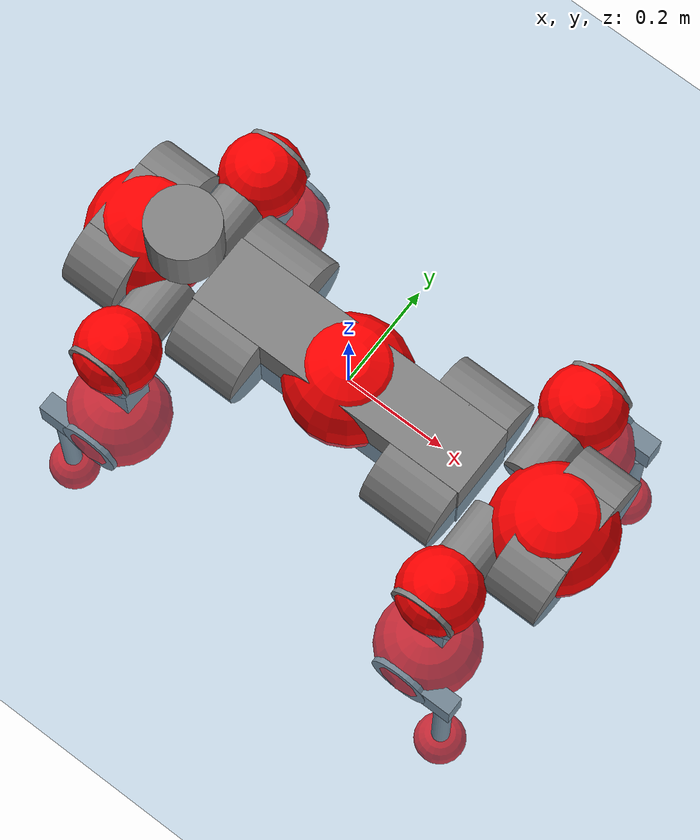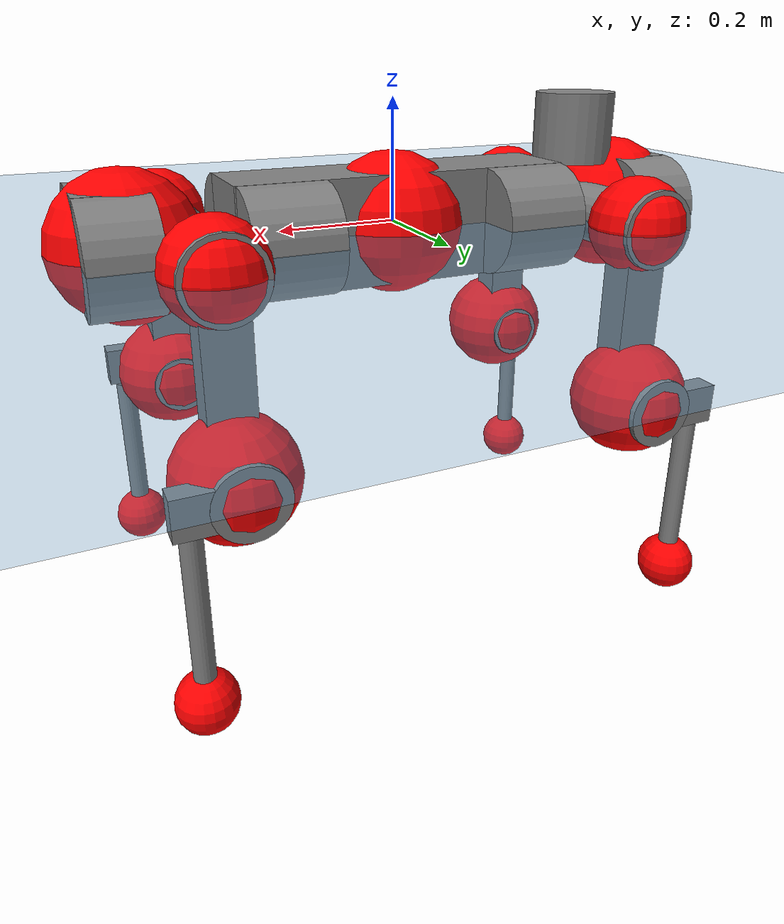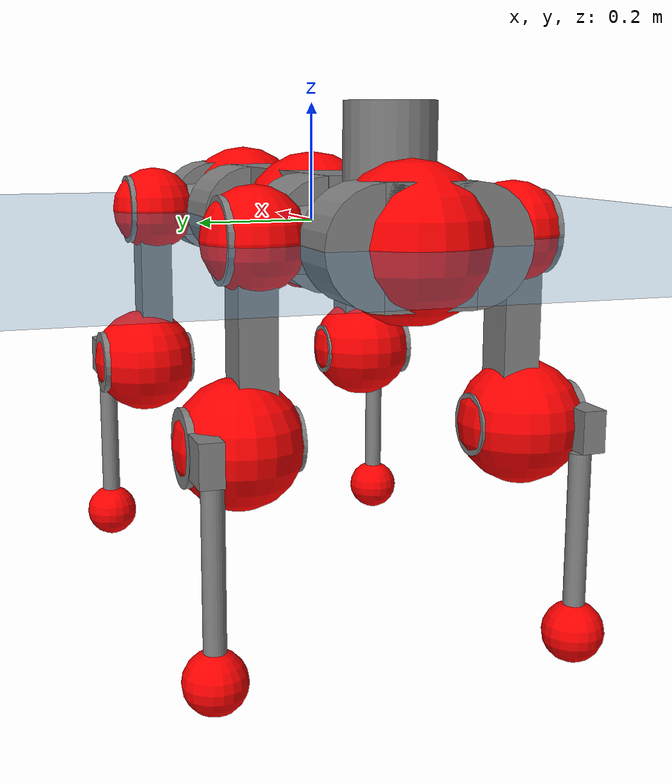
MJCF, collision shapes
<mujoco model="anymal_c">
  <compiler angle="radian" assetdir="assets" balanceinertia="true" inertiafromgeom="false"/>

  <option timestep="0.005" density="1.2" viscosity="2e-05"/>

  <size nkey="1"/>

  <visual>
    <quality shadowsize="8192"/>
    <map shadowclip="0.5"/>
  </visual>

  <default>
    <default class="/">
      <material specular="0" shininess="0.25"/>
      <geom contype="0" conaffinity="0" group="1" solref="-1000 -80"/>
      <site size="0.01 0.005 0.005" group="5"/>
      <general forcelimited="true" forcerange="-80 80" biastype="affine" gainprm="80" biasprm="0 -80 -2"/>
      <default class="anymal_c">
        <joint armature="0.01" damping="0.01" frictionloss="0.1"/>
        <default class="visual">
          <geom type="mesh" group="2"/>
          <default class="visual_zflip"/>
        </default>
        <default class="collision">
          <geom type="cylinder" group="3"/>
          <default class="foot">
            <geom size="0.03 0 0" type="sphere" condim="6" priority="1" friction="0.8 0.02 0.01" solimp="0.015 1 0.03"/>
          </default>
        </default>
      </default>
      <default class="reward_collision_sphere">
        <geom group="5" rgba="1 0 0 1"/>
      </default>
    </default>
  </default>

  <asset>
    <texture type="skybox" colorspace="auto" name="//unnamed_texture_0" builtin="gradient" rgb1="0.95 0.95 0.95" rgb2="0.95 0.95 0.95" width="100" height="600"/>
    <texture type="2d" colorspace="auto" name="texplane" builtin="checker" rgb1="0.345 0.575 0.748" rgb2="0.345 0.575 0.748" markrgb="1 1 1" width="512" height="512"/>
    <texture type="2d" colorspace="linear" name="base" file="base.png"/>
    <texture type="2d" colorspace="linear" name="top_shell" file="top_shell.png"/>
    <texture type="2d" colorspace="linear" name="bottom_shell" file="bottom_shell.png"/>
    <texture type="2d" colorspace="linear" name="remote" file="remote.png"/>
    <texture type="2d" colorspace="linear" name="hatch" file="hatch.png"/>
    <texture type="2d" colorspace="linear" name="handle" file="handle.png"/>
    <texture type="2d" colorspace="linear" name="face" file="face.png"/>
    <texture type="2d" colorspace="linear" name="battery" file="battery.png"/>
    <texture type="2d" colorspace="linear" name="lidar_cage" file="lidar_cage.png"/>
    <texture type="2d" colorspace="linear" name="depth_camera" file="depth_camera.png"/>
    <texture type="2d" colorspace="linear" name="wide_angle_camera" file="wide_angle_camera.png"/>
    <texture type="2d" colorspace="linear" name="lidar" file="lidar.png"/>
    <texture type="2d" colorspace="linear" name="drive" file="drive.png"/>
    <texture type="2d" colorspace="linear" name="hip_l" file="hip_l.png"/>
    <texture type="2d" colorspace="linear" name="shank_l" file="shank_l.png"/>
    <texture type="2d" colorspace="linear" name="foot" file="foot.png"/>
    <texture type="2d" colorspace="linear" name="thigh" file="thigh.png"/>
    <texture type="2d" colorspace="linear" name="shank_r" file="shank_r.png"/>
    <texture type="2d" colorspace="linear" name="hip_r" file="hip_r.png"/>
    <material name="MatPlane" class="/" texture="texplane" texuniform="true" texrepeat="2 2" specular="0.9" shininess="0.5"/>
    <material name="black_plastic" class="/" rgba="0.007 0.007 0.007 1"/>
    <material name="green" class="/" rgba="0.052 0.178 0.033 1"/>
    <material name="red" class="/" rgba="0.178 0.006 0.005 1"/>
    <material name="yellow" class="/" rgba="0.178 0.119 0.006 1"/>
    <material name="lwl" class="/" rgba="0.8 0.8 0.8 1"/>
    <material name="base" class="/" texture="base"/>
    <material name="top_shell" class="/" texture="top_shell"/>
    <material name="bottom_shell" class="/" texture="bottom_shell"/>
    <material name="hip_l" class="/" texture="hip_l"/>
    <material name="thigh" class="/" texture="thigh"/>
    <material name="shank_l" class="/" texture="shank_l"/>
    <material name="foot" class="/" texture="foot"/>
    <material name="hip_r" class="/" texture="hip_r"/>
    <material name="shank" class="/" texture="shank_r"/>
    <material name="hatch" class="/" texture="hatch"/>
    <material name="remote" class="/" texture="remote"/>
    <material name="handle" class="/" texture="handle"/>
    <material name="face" class="/" texture="face"/>
    <material name="depth_camera" class="/" texture="depth_camera"/>
    <material name="wide_angle_camera" class="/" texture="wide_angle_camera"/>
    <material name="battery" class="/" texture="battery"/>
    <material name="lidar_cage" class="/" texture="lidar_cage"/>
    <material name="lidar" class="/" texture="lidar"/>
    <material name="drive" class="/" texture="drive"/>
    <mesh name="base_0" class="/" file="base_0.obj"/>
    <mesh name="base_1" class="/" file="base_1.obj"/>
    <mesh name="base_2" class="/" file="base_2.obj"/>
    <mesh name="base_3" class="/" file="base_3.obj"/>
    <mesh name="base_4" class="/" file="base_4.obj"/>
    <mesh name="base_5" class="/" file="base_5.obj"/>
    <mesh name="top_shell" class="/" file="top_shell.obj"/>
    <mesh name="bottom_shell" class="/" file="bottom_shell.obj"/>
    <mesh name="remote" class="/" file="remote.obj"/>
    <mesh name="handle" class="/" file="handle.obj"/>
    <mesh name="face" class="/" file="face.obj"/>
    <mesh name="wide_angle_camera" class="/" file="wide_angle_camera.obj"/>
    <mesh name="depth_camera" class="/" file="depth_camera.obj"/>
    <mesh name="battery" class="/" file="battery.obj"/>
    <mesh name="lidar_cage" class="/" file="lidar_cage.obj"/>
    <mesh name="lidar" class="/" file="lidar.obj"/>
    <mesh name="drive" class="/" file="drive.obj"/>
    <mesh name="hip_l" class="/" file="hip_l.obj"/>
    <mesh name="thigh" class="/" file="thigh.obj"/>
    <mesh name="shank_l" class="/" file="shank_l.obj"/>
    <mesh name="foot" class="/" file="foot.obj"/>
    <mesh name="hip_r" class="/" file="hip_r.obj"/>
    <mesh name="hatch" class="/" file="hatch.obj"/>
    <mesh name="shank_r" class="/" file="shank_r.obj"/>
  </asset>

  <worldbody>
    <geom name="floor" class="/" size="100 100 0.125" type="plane" group="0" material="MatPlane"/>
    <light name="toplight_shadow" class="/" pos="0 0 5" dir="0.0990148 0.0990148 -0.990148" type="directional" ambient="0.04 0.04 0.04" diffuse="0.55 0.55 0.55" specular="0.12 0.12 0.12"/>
    <light name="toplight_fill" class="/" pos="0 0 5" dir="0.0990148 0.0990148 -0.990148" type="directional" castshadow="false" ambient="0.04 0.04 0.04" diffuse="0.3 0.3 0.3" specular="0.08 0.08 0.08"/>
    <body name="trunk" childclass="anymal_c" pos="2.95256e-05 -8.15354e-05 -0.000448879" quat="1 3.81663e-05 -1.05904e-05 -6.90275e-07">
      <inertial pos="0.00202503 -0.000645494 0.0526649" quat="0.500201 0.49979 0.5 0.500009" mass="18.7765" diaginertia="0.570398 0.470632 0.269523"/>
      <joint name="//unnamed_joint_0" type="free" armature="0" damping="0" frictionloss="0"/>
      <geom name="//unnamed_geom_1" class="visual" material="green" mesh="base_0"/>
      <geom name="//unnamed_geom_2" class="visual" material="yellow" mesh="base_1"/>
      <geom name="//unnamed_geom_3" class="visual" material="red" mesh="base_2"/>
      <geom name="//unnamed_geom_4" class="visual" material="black_plastic" mesh="base_3"/>
      <geom name="//unnamed_geom_5" class="visual" material="lwl" mesh="base_4"/>
      <geom name="//unnamed_geom_6" class="visual" material="base" mesh="base_5"/>
      <geom name="trunk_1" class="collision" size="0.286554 0.0691682 0.0889306" type="box"/>
      <geom name="trunk_2" class="collision" size="0.0889306 0.0716385" pos="0.212313 0.0661597 0" quat="0.707107 0 0.707107 0"/>
      <geom name="trunk_3" class="collision" size="0.0889306 0.0716385" pos="-0.212313 0.0661597 0" quat="0.707107 0 0.707107 0"/>
      <geom name="trunk_4" class="collision" size="0.0889306 0.0716385" pos="0.212313 -0.0661597 0" quat="0.707107 0 0.707107 0"/>
      <geom name="trunk_5" class="collision" size="0.0889306 0.0716385" pos="-0.212313 -0.0661597 0" quat="0.707107 0 0.707107 0"/>
      <geom name="//unnamed_geom_12" class="visual" material="top_shell" mesh="top_shell"/>
      <geom name="//unnamed_geom_13" class="visual" material="bottom_shell" mesh="bottom_shell"/>
      <geom name="//unnamed_geom_14" class="visual" material="remote" mesh="remote"/>
      <geom name="//unnamed_geom_15" class="visual" material="handle" mesh="handle"/>
      <geom name="//unnamed_geom_16" class="visual" pos="0.404615 0 0" quat="1 0 0 0" material="face" mesh="face"/>
      <geom name="trunk_6" class="collision" size="0.0543465 0.0691682 0.0889306" pos="0.458303 0 0" type="box"/>
      <geom name="//unnamed_geom_18" class="collision" size="0.0889306 0.0543465" pos="0.458303 0.0661597 0" quat="0.707107 0 0.707107 0"/>
      <geom name="//unnamed_geom_19" class="collision" size="0.0889306 0.0543465" pos="0.458303 -0.0661597 0" quat="0.707107 0 0.707107 0"/>
      <geom name="//unnamed_geom_20" class="visual" pos="0.450643 0 -0.030966" quat="0.965926 0 0.258819 0" material="depth_camera" mesh="depth_camera"/>
      <geom name="//unnamed_geom_21" class="visual" pos="0.500765 0 0.0156147" material="wide_angle_camera" mesh="wide_angle_camera"/>
      <geom name="//unnamed_geom_22" class="visual_zflip" pos="-0.404615 0 0" quat="0 0 0 1" material="face" mesh="face"/>
      <geom name="trunk_7" class="collision" size="0.0543465 0.0691682 0.0889306" pos="-0.458303 0 0" quat="0 0 0 1" type="box"/>
      <geom name="//unnamed_geom_24" class="collision" size="0.0889306 0.0543465" pos="-0.458303 -0.0661597 0" quat="0 -0.707107 0 0.707107"/>
      <geom name="//unnamed_geom_25" class="collision" size="0.0889306 0.0543465" pos="-0.458303 0.0661597 0" quat="0 -0.707107 0 0.707107"/>
      <geom name="//unnamed_geom_26" class="visual" pos="-0.450643 0 -0.030966" quat="0 -0.258819 0 0.965926" material="depth_camera" mesh="depth_camera"/>
      <geom name="//unnamed_geom_27" class="visual_zflip" pos="-0.500765 0 0.0156147" quat="0 0 0 1" material="wide_angle_camera" mesh="wide_angle_camera"/>
      <geom name="//unnamed_geom_28" class="visual" material="battery" mesh="battery"/>
      <geom name="//unnamed_geom_29" class="visual" pos="0 0.0718611 0.0297924" quat="0.683013 -0.183013 0.183013 0.683013" material="depth_camera" mesh="depth_camera"/>
      <geom name="//unnamed_geom_30" class="visual" pos="0 -0.0718611 0.0297924" quat="0.683013 0.183013 0.183013 -0.683013" material="depth_camera" mesh="depth_camera"/>
      <geom name="//unnamed_geom_31" class="visual" pos="-0.355319 0 0.0766651" quat="1 0 0 0" material="lidar_cage" mesh="lidar_cage"/>
      <geom name="trunk_8" class="collision" size="0.0691682 0.059287" pos="-0.355319 0 0.139249"/>
      <geom name="//unnamed_geom_33" class="visual" pos="-0.355319 -1.21839e-05 0.148324" quat="0.707107 0 0 -0.707107" material="lidar" mesh="lidar"/>
      <geom name="//unnamed_geom_34" class="visual" pos="0.292748 0.0983292 -1.68921e-09" quat="0.258819 0.965926 0 0" material="drive" mesh="drive"/>
      <geom name="//unnamed_geom_35" class="visual" pos="0.292748 -0.0983292 1.68921e-09" quat="0.258819 -0.965926 0 0" material="drive" mesh="drive"/>
      <geom name="//unnamed_geom_36" class="visual" pos="-0.292748 0.0983292 1.68921e-09" quat="0 0 0.965926 -0.258819" material="drive" mesh="drive"/>
      <geom name="//unnamed_geom_37" class="visual" pos="-0.292748 -0.0983292 -1.68921e-09" quat="0 0 -0.965926 -0.258819" material="drive" mesh="drive"/>
      <geom name="//unnamed_geom_38" class="visual" pos="0.113233 0 0.0761436" quat="1 0 0 0" material="hatch" mesh="hatch"/>
      <geom name="//unnamed_geom_39" class="reward_collision_sphere" size="0.118574"/>
      <geom name="//unnamed_geom_40" class="reward_collision_sphere" size="0.118574" pos="0.439268 0 0"/>
      <geom name="//unnamed_geom_41" class="reward_collision_sphere" size="0.118574" pos="-0.439268 0 0"/>
      <site name="imu" pos="0.245049 0.00366236 0.0515952" size="0.00988117"/>
      <camera name="track" pos="0 -1.89028 0" quat="0.707107 0.707107 0 0" mode="trackcom"/>
      <camera name="ego_camera" pos="0.439268 0 -0.0417225" quat="-0.5 -0.5 0.5 0.5"/>
      <body name="LF_HIP" pos="0.293286 0.0981693 -0.000605768" quat="0.258997 0.965878 2.75556e-05 0.000109717">
        <inertial pos="0.055472 -0.0140265 -0.00896603" quat="-0.128071 0.710388 -0.133654 0.679031" mass="2.70969" diaginertia="0.00519344 0.00373172 0.00410326"/>
        <joint name="LF_HAA" pos="0 0 0" axis="0.99999 0.000710023 0.00441027" range="-0.72292 0.474991" armature="0.00988141" damping="0.0142375" frictionloss="0.0951625"/>
        <geom name="//unnamed_geom_42" class="visual" pos="0 -9.93686e-05 1.63212e-05" quat="0.258819 -0.965926 0 0" material="hip_l" mesh="hip_l"/>
        <geom name="//unnamed_geom_43" class="visual" pos="0.0584714 -0.0704771 -0.0414142" quat="0.183013 -0.683013 0.683013 0.183013" material="drive" mesh="drive"/>
        <geom name="//unnamed_geom_44" class="collision" size="0.0494059 0.0691682" pos="0.0584714 -0.0113037 -0.00720235" quat="-0.353553 -0.612372 0.612372 -0.353553"/>
        <body name="LF_THIGH" pos="0.0594543 -0.0699084 -0.0440657" quat="0.182934 -0.682989 0.683087 0.182904">
          <inertial pos="0.0302705 0.000278206 -0.256005" quat="0.993082 -0.00495766 -0.08168 0.0842124" mass="2.99109" diaginertia="0.027065 0.0226163 0.00522235"/>
          <joint name="LF_HFE" pos="0 0 0" axis="0.999993 -0.00363127 -0.000747456" stiffness="0.0033159" range="-3.12606 3.13988" armature="0.010239" damping="0.00451441" frictionloss="0.09902"/>
          <geom name="//unnamed_geom_45" class="visual" pos="0.000617023 9.72283e-07 0" quat="0.707107 0 0 -0.707107" material="thigh" mesh="thigh"/>
          <geom name="//unnamed_geom_46" class="collision" size="0.0642276 0.0395247" pos="0.039046 0 0" quat="0.5 0.5 -0.5 -0.5"/>
          <geom name="//unnamed_geom_47" class="collision" size="0.0370544 0.0296435 0.139635" pos="0.0292845 0 -0.147399" quat="0.707107 0 0 -0.707107" type="box"/>
          <geom name="//unnamed_geom_48" class="visual" pos="0.0979079 0 -0.297273" quat="1 0 0 0" material="drive" mesh="drive"/>
          <geom name="//unnamed_geom_49" class="collision" size="0.0494059 0.0691682" pos="0.0295774 0 -0.297273" quat="0.707107 0 0.707107 0"/>
          <geom name="//unnamed_geom_50" class="reward_collision_sphere" size="0.0790494" pos="0.0244038 0 0"/>
          <body name="LF_SHANK" pos="0.0983046 -0.000468256 -0.297415" quat="1 -1.88303e-05 2.87977e-06 5.35981e-06">
            <inertial pos="0.00443971 -0.058056 -0.0840713" quat="0.992916 -0.115834 -0.00129593 -0.0264111" mass="0.568722" diaginertia="0.00901643 0.0069558 0.00138375"/>
            <joint name="LF_KFE" pos="0 0 0" axis="0.999996 -0.0017014 -0.00236442" stiffness="0.000480878" range="-3.15605 3.1227" armature="0.00965685" damping="0.00752354" frictionloss="0.10171"/>
            <geom name="//unnamed_geom_51" class="visual" pos="0.000201198 0.0010728 0" quat="0.707107 0 0 -0.707107" material="shank_l" mesh="shank_l"/>
            <geom name="LF_kfe_act" class="collision" size="0.059287 0.0197623" pos="0.019523 0 0" quat="0.5 0.5 -0.5 -0.5"/>
            <geom name="//unnamed_geom_53" class="collision" size="0.0568158 0.033349 0.0187742" pos="0.019523 -0.0543445 0" quat="0.5 0.5 -0.5 -0.5" type="box"/>
            <geom name="//unnamed_geom_54" class="visual" pos="0.0127387 -0.0827792 -0.352524" quat="0.382683 0 0 -0.92388" material="foot" mesh="foot"/>
            <geom name="LF_calf" class="collision" size="0.0172921 0.139574" pos="0.0127388 -0.0831249 -0.176262" quat="0.707107 0 0 -0.707107"/>
            <geom name="LF_foot" class="foot" size="0.0298918" pos="0.0127388 -0.0831249 -0.329055" quat="0.707107 0 0 -0.707107"/>
            <geom name="//unnamed_geom_57" class="reward_collision_sphere" size="0.0988117" pos="-0.0488075 0 0"/>
            <geom name="//unnamed_geom_58" class="reward_collision_sphere" size="0.0494059" pos="0.0127388 -0.0831249 -0.329055"/>
            <site name="LF_foot" class="foot" pos="0.0127388 -0.0831249 -0.329055" quat="0.707107 0 0 -0.707107" size="0.00988117"/>
          </body>
        </body>
      </body>
      <body name="RF_HIP" pos="0.293872 -0.0986465 -0.000339576" quat="0.258548 -0.965998 7.8741e-06 3.42627e-05">
        <inertial pos="0.0556015 0.0148353 -0.00872515" quat="0.133142 0.67824 0.12891 0.711088" mass="2.69202" diaginertia="0.00520153 0.00369176 0.00405752"/>
        <joint name="RF_HAA" pos="0 0 0" axis="0.999987 -0.00406099 -0.00298283" range="-0.501381 0.735012" armature="0.010099" damping="0.0140902" frictionloss="0.0944469"/>
        <geom name="//unnamed_geom_59" class="visual" pos="0 9.93678e-05 1.63212e-05" quat="0.258819 0.965926 0 0" material="hip_r" mesh="hip_r"/>
        <geom name="//unnamed_geom_60" class="visual" pos="0.0584714 0.0704771 -0.0414142" quat="0.183013 0.683013 0.683013 -0.183013" material="drive" mesh="drive"/>
        <geom name="//unnamed_geom_61" class="collision" size="0.0494059 0.0691682" pos="0.0584714 0.0113037 -0.00720235" quat="-0.353553 0.612372 0.612372 0.353553"/>
        <body name="RF_THIGH" pos="0.0589548 0.0695059 -0.0436981" quat="0.182904 0.683131 0.682996 -0.18274">
          <inertial pos="0.0306913 9.09678e-05 -0.25639" quat="0.99263 -0.00606728 -0.0822324 0.0888103" mass="2.93363" diaginertia="0.0267525 0.0226814 0.00513442"/>
          <joint name="RF_HFE" pos="0 0 0" axis="0.999999 -0.00128242 -0.000878063" stiffness="0.0016585" range="-3.14266 3.15601" armature="0.0100995" damping="0.00216682" frictionloss="0.10195"/>
          <geom name="//unnamed_geom_62" class="visual" pos="0.000617023 9.72283e-07 0" quat="0.707107 0 0 -0.707107" material="thigh" mesh="thigh"/>
          <geom name="//unnamed_geom_63" class="collision" size="0.0642276 0.0395247" pos="0.039046 0 0" quat="0.5 0.5 0.5 0.5"/>
          <geom name="//unnamed_geom_64" class="collision" size="0.0370544 0.0296435 0.139635" pos="0.0292845 0 -0.147399" quat="0.707107 0 0 0.707107" type="box"/>
          <geom name="//unnamed_geom_65" class="visual" pos="0.0979079 0 -0.297273" quat="1 0 0 0" material="drive" mesh="drive"/>
          <geom name="//unnamed_geom_66" class="collision" size="0.0494059 0.0691682" pos="0.0295774 0 -0.297273" quat="0.707107 0 0.707107 0"/>
          <geom name="//unnamed_geom_67" class="reward_collision_sphere" size="0.0790494" pos="0.0244038 0 0"/>
          <body name="RF_SHANK" pos="0.097326 0.000531475 -0.296968" quat="1 -0.000116664 -0.000146828 -0.000119383">
            <inertial pos="0.00505902 0.0579926 -0.0845909" quat="0.992722 0.117711 -0.00405639 0.0251012" mass="0.565667" diaginertia="0.009041 0.00694473 0.00139717"/>
            <joint name="RF_KFE" pos="0 0 0" axis="0.999995 0.00322299 0.000108146" range="-3.13307 3.13613" armature="0.00994257" damping="0.0106333" frictionloss="0.101913"/>
            <geom name="//unnamed_geom_68" class="visual" pos="0.000201196 -0.00107279 0" quat="0.707107 0 0 0.707107" material="shank" mesh="shank_r"/>
            <geom name="RF_kfe_act" class="collision" size="0.059287 0.0197623" pos="0.019523 0 0" quat="0.5 0.5 0.5 0.5"/>
            <geom name="//unnamed_geom_70" class="collision" size="0.0568158 0.033349 0.0187742" pos="0.019523 0.0543445 0" quat="0.5 0.5 0.5 0.5" type="box"/>
            <geom name="//unnamed_geom_71" class="visual" pos="0.0127388 0.0827792 -0.352524" quat="0.382683 0 0 0.92388" material="foot" mesh="foot"/>
            <geom name="RF_calf" class="collision" size="0.0172921 0.139574" pos="0.0127388 0.0831249 -0.176262" quat="0.707107 0 0 0.707107"/>
            <geom name="RF_foot" class="foot" size="0.0297291" pos="0.0127388 0.0831249 -0.329055" quat="0.707107 0 0 0.707107"/>
            <geom name="//unnamed_geom_74" class="reward_collision_sphere" size="0.0988117" pos="-0.0488075 0 0"/>
            <geom name="//unnamed_geom_75" class="reward_collision_sphere" size="0.0494059" pos="0.0127388 0.0831249 -0.329055"/>
            <site name="RF_foot" class="foot" pos="0.0127388 0.0831249 -0.329055" quat="0.707107 0 0 0.707107" size="0.00988117"/>
          </body>
        </body>
      </body>
      <body name="LH_HIP" pos="-0.292118 0.0991592 -2.04838e-05" quat="-0.000133357 -0.000130936 0.965906 -0.258892">
        <inertial pos="0.0551535 0.0142532 -0.00924011" quat="0.135776 0.678643 0.128628 0.710256" mass="2.71458" diaginertia="0.00528656 0.00373857 0.00414081"/>
        <joint name="LH_HAA" pos="0 0 0" axis="1 -0.000574468 0.00016405" range="-0.489587 0.723874" armature="0.00967266" damping="0.00703683" frictionloss="0.0992157"/>
        <geom name="//unnamed_geom_76" class="visual" pos="0 9.93678e-05 1.63212e-05" quat="-0.258819 -0.965926 0 0" material="hip_r" mesh="hip_r"/>
        <geom name="//unnamed_geom_77" class="visual" pos="0.0584714 0.0704771 -0.0414142" quat="0.183013 0.683013 0.683013 -0.183013" material="drive" mesh="drive"/>
        <geom name="//unnamed_geom_78" class="collision" size="0.0494059 0.0691682" pos="0.0584714 0.0113037 -0.00720235" quat="-0.353553 0.612372 0.612372 0.353553"/>
        <body name="LH_THIGH" pos="0.0577183 0.0688205 -0.0430132" quat="0.183027 0.682876 0.683108 -0.183151">
          <inertial pos="0.0308789 0.00069706 -0.256712" quat="0.992775 -0.00506223 -0.0808055 0.0885535" mass="3.00277" diaginertia="0.027134 0.0228404 0.00516671"/>
          <joint name="LH_HFE" pos="0 0 0" axis="0.999996 0.00295544 0.000377898" range="-3.12411 3.13655" armature="0.00985831" damping="0.00338513" frictionloss="0.0964698"/>
          <geom name="//unnamed_geom_79" class="visual" pos="0.000617023 9.72283e-07 0" quat="0.707107 0 0 -0.707107" material="thigh" mesh="thigh"/>
          <geom name="//unnamed_geom_80" class="collision" size="0.0642276 0.0395247" pos="0.039046 0 0" quat="0.5 0.5 -0.5 -0.5"/>
          <geom name="//unnamed_geom_81" class="collision" size="0.0370544 0.0296435 0.139635" pos="0.0292845 0 -0.147399" quat="0.707107 0 0 -0.707107" type="box"/>
          <geom name="//unnamed_geom_82" class="visual" pos="0.0979079 0 -0.297273" quat="1 0 0 0" material="drive" mesh="drive"/>
          <geom name="//unnamed_geom_83" class="collision" size="0.0494059 0.0691682" pos="0.0295774 0 -0.297273" quat="0.707107 0 0.707107 0"/>
          <geom name="//unnamed_geom_84" class="reward_collision_sphere" size="0.0790494" pos="0.0244038 0 0"/>
          <body name="LH_SHANK" pos="0.0985658 -0.00102566 -0.297502" quat="1 -0.000145336 -3.02677e-05 -0.000100207">
            <inertial pos="0.00497808 0.0569714 -0.0847822" quat="0.992951 0.115823 -0.000765909 0.0251623" mass="0.571873" diaginertia="0.00911153 0.00710056 0.00138974"/>
            <joint name="LH_KFE" pos="0 0 0" axis="0.999999 -0.000817879 0.0013062" range="-3.14047 3.12373" armature="0.00980564" damping="0.00308626" frictionloss="0.0993149"/>
            <geom name="//unnamed_geom_85" class="visual" pos="0.000201196 -0.00107279 0" quat="-0.707107 0 0 -0.707107" material="shank" mesh="shank_r"/>
            <geom name="LH_kfe_act" class="collision" size="0.059287 0.0197623" pos="0.019523 0 0" quat="0.5 0.5 -0.5 -0.5"/>
            <geom name="//unnamed_geom_87" class="collision" size="0.0568158 0.033349 0.0187742" pos="0.019523 0.0543445 0" quat="0.5 0.5 -0.5 -0.5" type="box"/>
            <geom name="//unnamed_geom_88" class="visual" pos="0.0127388 0.0827792 -0.352524" quat="-0.382683 0 0 -0.92388" material="foot" mesh="foot"/>
            <geom name="LH_calf" class="collision" size="0.0172921 0.139574" pos="0.0127388 0.0831249 -0.176262" quat="0.707107 0 0 -0.707107"/>
            <geom name="LH_foot" class="foot" size="0.0305844" pos="0.0127388 0.0831249 -0.329055" quat="0.707107 0 0 -0.707107"/>
            <geom name="//unnamed_geom_91" class="reward_collision_sphere" size="0.0988117" pos="-0.0488075 0 0"/>
            <geom name="//unnamed_geom_92" class="reward_collision_sphere" size="0.0494059" pos="0.0127388 0.0831249 -0.329055"/>
            <site name="LH_foot" class="foot" pos="0.0127388 0.0831249 -0.329055" quat="0.707107 0 0 -0.707107" size="0.00988117"/>
          </body>
        </body>
      </body>
      <body name="RH_HIP" pos="-0.291934 -0.0983038 -0.000256725" quat="-3.34908e-05 -0.000139663 -0.965957 -0.258703">
        <inertial pos="0.05589 -0.0137011 -0.00880983" quat="-0.127998 0.709752 -0.135228 0.679398" mass="2.66782" diaginertia="0.0052325 0.00373729 0.00404768"/>
        <joint name="RH_HAA" pos="0 0 0" axis="0.999984 0.00519074 0.00245472" range="-0.710362 0.492294" armature="0.00986283" damping="0.0109772" frictionloss="0.102591"/>
        <geom name="//unnamed_geom_93" class="visual" pos="0 -9.93686e-05 1.63212e-05" quat="-0.258819 0.965926 0 0" material="hip_l" mesh="hip_l"/>
        <geom name="//unnamed_geom_94" class="visual" pos="0.0584714 -0.0704771 -0.0414142" quat="-0.183013 0.683013 -0.683013 -0.183013" material="drive" mesh="drive"/>
        <geom name="//unnamed_geom_95" class="collision" size="0.0494059 0.0691682" pos="0.0584714 -0.0113037 -0.00720235" quat="0.353553 0.612372 -0.612372 0.353553"/>
        <body name="RH_THIGH" pos="0.0584705 -0.0685958 -0.0434138" quat="-0.18323 0.683072 -0.682881 -0.183068">
          <inertial pos="0.0298689 0.000752126 -0.255846" quat="0.992682 -0.00419864 -0.0825918 0.0879997" mass="2.92887" diaginertia="0.0266136 0.0224361 0.00518188"/>
          <joint name="RH_HFE" pos="0 0 0" axis="0.999997 0.00236195 0.000912276" range="-3.13634 3.15734" armature="0.00989312" damping="0.0120555" frictionloss="0.0967522"/>
          <geom name="//unnamed_geom_96" class="visual" pos="0.000617023 9.72283e-07 0" quat="0.707107 0 0 -0.707107" material="thigh" mesh="thigh"/>
          <geom name="//unnamed_geom_97" class="collision" size="0.0642276 0.0395247" pos="0.039046 0 0" quat="0.5 0.5 0.5 0.5"/>
          <geom name="//unnamed_geom_98" class="collision" size="0.0370544 0.0296435 0.139635" pos="0.0292845 0 -0.147399" quat="0.707107 0 0 0.707107" type="box"/>
          <geom name="//unnamed_geom_99" class="visual" pos="0.0979079 0 -0.297273" quat="1 0 0 0" material="drive" mesh="drive"/>
          <geom name="//unnamed_geom_100" class="collision" size="0.0494059 0.0691682" pos="0.0295774 0 -0.297273" quat="0.707107 0 0.707107 0"/>
          <geom name="//unnamed_geom_101" class="reward_collision_sphere" size="0.0790494" pos="0.0244038 0 0"/>
          <body name="RH_SHANK" pos="0.0971661 -0.000445485 -0.296749" quat="1 0.000337133 -9.01559e-05 0.000113339">
            <inertial pos="0.00551842 -0.0577112 -0.0840931" quat="0.992943 -0.115819 -0.00112343 -0.0254807" mass="0.558345" diaginertia="0.00887648 0.00682796 0.00136513"/>
            <joint name="RH_KFE" pos="0 0 0" axis="0.99997 4.8367e-05 -0.00769484" range="-3.12929 3.12672" armature="0.00990594" damping="0.00503332" frictionloss="0.0968898"/>
            <geom name="//unnamed_geom_102" class="visual" pos="0.000201198 0.0010728 0" quat="0.707107 0 0 -0.707107" material="shank_l" mesh="shank_l"/>
            <geom name="RH_kfe_act" class="collision" size="0.059287 0.0197623" pos="0.019523 0 0" quat="0.5 0.5 0.5 0.5"/>
            <geom name="//unnamed_geom_104" class="collision" size="0.0568158 0.033349 0.0187742" pos="0.019523 -0.0543445 0" quat="0.5 0.5 0.5 0.5" type="box"/>
            <geom name="//unnamed_geom_105" class="visual" pos="0.0127387 -0.0827792 -0.352524" quat="0.382683 0 0 -0.92388" material="foot" mesh="foot"/>
            <geom name="RH_calf" class="collision" size="0.0172921 0.139574" pos="0.0127388 -0.0831249 -0.176262" quat="0.707107 0 0 0.707107"/>
            <geom name="RH_foot" class="foot" size="0.0285472" pos="0.0127388 -0.0831249 -0.329055" quat="0.707107 0 0 0.707107"/>
            <geom name="//unnamed_geom_108" class="reward_collision_sphere" size="0.0988117" pos="-0.0488075 0 0"/>
            <geom name="//unnamed_geom_109" class="reward_collision_sphere" size="0.0494059" pos="0.0127388 -0.0831249 -0.329055"/>
            <site name="RH_foot" class="foot" pos="0.0127388 -0.0831249 -0.329055" quat="0.707107 0 0 0.707107" size="0.00988117"/>
          </body>
        </body>
      </body>
    </body>
  </worldbody>

  <contact>
    <pair class="/" geom1="floor" geom2="LF_foot" name="//unnamed_contact_0"/>
    <pair class="/" geom1="floor" geom2="RF_foot" name="//unnamed_contact_1"/>
    <pair class="/" geom1="floor" geom2="LH_foot" name="//unnamed_contact_2"/>
    <pair class="/" geom1="floor" geom2="RH_foot" name="//unnamed_contact_3"/>
  </contact>

  <actuator>
    <general name="LF_HAA" class="/" joint="LF_HAA" forcerange="-79.4514 79.4514" gainprm="79.9812" biasprm="0 -79.9812 -1.97084"/>
    <general name="LF_HFE" class="/" joint="LF_HFE" forcerange="-80.6461 80.6461" gainprm="79.9812" biasprm="0 -79.9812 -1.97084"/>
    <general name="LF_KFE" class="/" joint="LF_KFE" forcerange="-76.7816 76.7816" gainprm="79.9812" biasprm="0 -79.9812 -1.97084"/>
    <general name="RF_HAA" class="/" joint="RF_HAA" forcerange="-78.9271 78.9271" gainprm="79.9812" biasprm="0 -79.9812 -1.97084"/>
    <general name="RF_HFE" class="/" joint="RF_HFE" forcerange="-77.4571 77.4571" gainprm="79.9812" biasprm="0 -79.9812 -1.97084"/>
    <general name="RF_KFE" class="/" joint="RF_KFE" forcerange="-78.6763 78.6763" gainprm="79.9812" biasprm="0 -79.9812 -1.97084"/>
    <general name="LH_HAA" class="/" joint="LH_HAA" forcerange="-78.9533 78.9533" gainprm="79.9812" biasprm="0 -79.9812 -1.97084"/>
    <general name="LH_HFE" class="/" joint="LH_HFE" forcerange="-78.5806 78.5806" gainprm="79.9812" biasprm="0 -79.9812 -1.97084"/>
    <general name="LH_KFE" class="/" joint="LH_KFE" forcerange="-79.9266 79.9266" gainprm="79.9812" biasprm="0 -79.9812 -1.97084"/>
    <general name="RH_HAA" class="/" joint="RH_HAA" forcerange="-79.4793 79.4793" gainprm="79.9812" biasprm="0 -79.9812 -1.97084"/>
    <general name="RH_HFE" class="/" joint="RH_HFE" forcerange="-79.1565 79.1565" gainprm="79.9812" biasprm="0 -79.9812 -1.97084"/>
    <general name="RH_KFE" class="/" joint="RH_KFE" forcerange="-76.6033 76.6033" gainprm="79.9812" biasprm="0 -79.9812 -1.97084"/>
  </actuator>

  <sensor>
    <gyro site="imu" name="imu_angular_velocity"/>
    <velocimeter site="imu" name="imu_linear_velocity"/>
    <framelinvel objtype="site" objname="LF_foot" name="LF_foot_global_linear_velocity"/>
    <framelinvel objtype="site" objname="RF_foot" name="RF_foot_global_linear_velocity"/>
    <framelinvel objtype="site" objname="LH_foot" name="LH_foot_global_linear_velocity"/>
    <framelinvel objtype="site" objname="RH_foot" name="RH_foot_global_linear_velocity"/>
  </sensor>

  <keyframe>
    <key name="home" qpos="0 0 0.55 1 0 0 0 0 0.4 -0.8 0 -0.4 0.8 0 -0.4 0.8 0 0.4 -0.8"/>
  </keyframe>
</mujoco>
